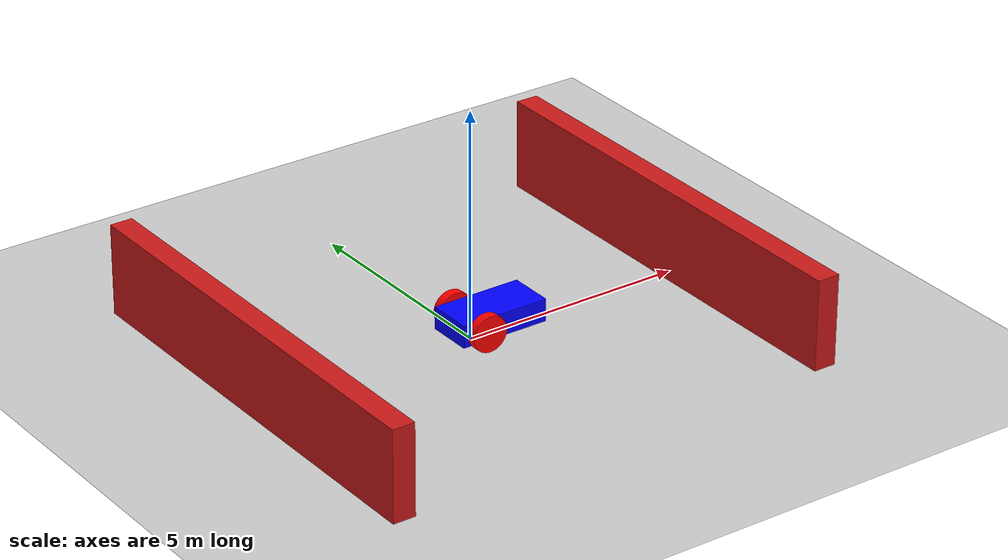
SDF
<?xml version="1.0" ?>
<sdf version="1.10">
    <world name="car_world">
        <physics name="1ms" type="ignored">
            <max_step_size>0.001</max_step_size>
            <real_time_factor>1.0</real_time_factor>
        </physics>
        <plugin
            filename="gz-sim-physics-system"
            name="gz::sim::systems::Physics">
        </plugin>
        <plugin
            filename="gz-sim-user-commands-system"
            name="gz::sim::systems::UserCommands">
        </plugin>
        <plugin
            filename="gz-sim-scene-broadcaster-system"
            name="gz::sim::systems::SceneBroadcaster">
        </plugin>

        <light type="directional" name="sun">
            <cast_shadows>true</cast_shadows>
            <pose>0 0 10 0 0 0</pose>
            <diffuse>0.8 0.8 0.8 1</diffuse>
            <specular>0.2 0.2 0.2 1</specular>
            <attenuation>
                <range>1000</range>
                <constant>0.9</constant>
                <linear>0.01</linear>
                <quadratic>0.001</quadratic>
            </attenuation>
            <direction>-0.5 0.1 -0.9</direction>
        </light>

        <model name="ground_plane">
            <static>true</static>
            <link name="link">
                <collision name="collision">
                <geometry>
                    <plane>
                    <normal>0 0 1</normal>
                    </plane>
                </geometry>
                </collision>
                <visual name="visual">
                <geometry>
                    <plane>
                    <normal>0 0 1</normal>
                    <size>100 100</size>
                    </plane>
                </geometry>
                <material>
                    <ambient>0.8 0.8 0.8 1</ambient>
                    <diffuse>0.8 0.8 0.8 1</diffuse>
                    <specular>0.8 0.8 0.8 1</specular>
                </material>
                </visual>
            </link>
        </model>
        <model name='vehicle_blue' canonical_link='chassis'>
            <pose relative_to='world'>0 0 0 0 0 0</pose>
            <link name='chassis'>
                <pose relative_to='__model__'>0.5 0 0.4 0 0 0</pose>
              <inertial> <!--inertial properties of the link mass, inertia matix-->
                  <mass>1.14395</mass>
                  <inertia>
                      <ixx>0.095329</ixx>
                      <ixy>0</ixy>
                      <ixz>0</ixz>
                      <iyy>0.381317</iyy>
                      <iyz>0</iyz>
                      <izz>0.476646</izz>
                  </inertia>
              </inertial>
                  <visual name='visual'>
                    <geometry>
                        <box>
                            <size>2.0 1.0 0.5</size>
                        </box>
                    </geometry>

                        <ambient>0.0 0.0 1.0 </ambient>
                    <material>
                        <diffuse>0.0 0.0 1.0 1</diffuse>
                        <specular>0.0 0.0 1.0 1</specular>
                    </material>
                </visual>
                  <collision name='collision'>
                      <geometry>
                          <box>
                              <size>2.0 1.0 0.5</size>
                          </box>
                      </geometry>
                  </collision>
                  <sensor name="imu_sensor" type="imu">
                        <always_on>1</always_on>
                        <update_rate>1</update_rate>
                        <visualize>true</visualize>
                        <topic>imu</topic>
                    </sensor>
              </link>
              <link name='left_wheel'>
                  <pose relative_to="chassis">-0.5 0.6 0 -1.5707 0 0</pose>
                  <inertial>
                      <mass>1</mass>
                      <inertia>
                          <ixx>0.043333</ixx>
                          <ixy>0</ixy>
                          <ixz>0</ixz>
                          <iyy>0.043333</iyy>
                          <iyz>0</iyz>
                          <izz>0.08</izz>
                      </inertia>
                  </inertial>

                    <visual name='visual'>
                      <geometry>
                          <cylinder>
                              <radius>0.4</radius>
                              <length>0.2</length>
                          </cylinder>
                      </geometry>
                      <material>
                          <ambient>1.0 0.0 0.0 1</ambient>
                          <diffuse>1.0 0.0 0.0 1</diffuse>
                          <specular>1.0 0.0 0.0 1</specular>
                      </material>
                  </visual>
                  <collision name='collision'>
                      <geometry>
                          <cylinder>
                              <radius>0.4</radius>
                              <length>0.2</length>
                          </cylinder>
                      </geometry>
                  </collision>
              </link>

<!--The same as left wheel but with different position-->
<link name='right_wheel'>
    <pose relative_to="chassis">-0.5 -0.6 0 -1.5707 0 0</pose> <!--angles are in radian-->
    <inertial>
        <mass>1</mass>
        <inertia>
            <ixx>0.043333</ixx>
            <ixy>0</ixy>
            <ixz>0</ixz>
            <iyy>0.043333</iyy>
            <iyz>0</iyz>
            <izz>0.08</izz>
        </inertia>
    </inertial>
    <visual name='visual'>
        <geometry>
            <cylinder>
                <radius>0.4</radius>
                <length>0.2</length>
            </cylinder>
        </geometry>
        <material>
            <ambient>1.0 0.0 0.0 1</ambient>
            <diffuse>1.0 0.0 0.0 1</diffuse>
            <specular>1.0 0.0 0.0 1</specular>
        </material>
    </visual>
    <collision name='collision'>
        <geometry>
            <cylinder>
                <radius>0.4</radius>
                <length>0.2</length>
            </cylinder>
        </geometry>
    </collision>
</link>

<frame name="caster_frame" attached_to='chassis'>
    <pose>0.8 0 -0.2 0 0 0</pose>
</frame>

<!--caster wheel-->
<link name='caster'>
    <pose relative_to='caster_frame'/>
    <inertial>
        <mass>1</mass>
        <inertia>
            <ixx>0.016</ixx>
            <ixy>0</ixy>
            <ixz>0</ixz>
            <iyy>0.016</iyy>
            <iyz>0</iyz>
            <izz>0.016</izz>
        </inertia>
    </inertial>
    <visual name='visual'>
        <geometry>
            <sphere>
                <radius>0.2</radius>
            </sphere>
        </geometry>
        <material>
            <ambient>0.0 1 0.0 1</ambient>
            <diffuse>0.0 1 0.0 1</diffuse>
            <specular>0.0 1 0.0 1</specular>
        </material>
    </visual>
    <collision name='collision'>
        <geometry>
            <sphere>
                <radius>0.2</radius>
            </sphere>
        </geometry>
    </collision>
</link>

<joint name='left_wheel_joint' type='revolute'>
    <pose relative_to='left_wheel'/>

        <parent>chassis</parent>
    <child>left_wheel</child>
        <axis>
        <xyz expressed_in='__model__'>0 1 0</xyz> <!--can be defined as any frame or even arbitrary frames-->
        <limit>
            <lower>-1.79769e+308</lower>    <!--negative infinity-->
            <upper>1.79769e+308</upper>     <!--positive infinity-->
        </limit>
    </axis>
</joint>

<joint name='right_wheel_joint' type='revolute'>
    <pose relative_to='right_wheel'/>

        <parent>chassis</parent>
    <child>right_wheel</child>
        <axis>
        <xyz expressed_in='__model__'>0 1 0</xyz> <!--can be defined as any frame or even arbitrary frames-->
        <limit>
            <lower>-1.79769e+308</lower>    <!--negative infinity-->
            <upper>1.79769e+308</upper>     <!--positive infinity-->
        </limit>
    </axis>
</joint>

<joint name='caster_wheel' type='ball'>
    <parent>chassis</parent>
    <child>caster</child>
</joint>

<plugin
    filename="gz-sim-diff-drive-system"
    name="gz::sim::systems::DiffDrive">
    <left_joint>left_wheel_joint</left_joint>
    <right_joint>right_wheel_joint</right_joint>
    <wheel_separation>1.2</wheel_separation>
    <wheel_radius>0.4</wheel_radius>
    <odom_publish_frequency>1</odom_publish_frequency>
    <topic>cmd_vel</topic>
</plugin>

          </model>

<model name="wall">
  <static>true</static>

  <!-- x y z roll pitch yaw -->
  <pose>5 0 1 0 0 0</pose>

  <link name="wall_link">

    <sensor name="wall_contact_sensor" type="contact">
        <contact>
            <collision>wall_collision</collision>
        </contact>
        </sensor>

    <visual name="wall_visual">
      <geometry>
        <box>
          <size>0.5 10.0 2.0</size>
        </box>
      </geometry>

      <material>
        <ambient>0.8 0.1 0.1 1</ambient>
        <diffuse>0.8 0.1 0.1 1</diffuse>
      </material>
    </visual>

    <collision name="wall_collision">
      <geometry>
        <box>
          <size>0.5 10.0 2.0</size>
        </box>
      </geometry>
    </collision>

  </link>

  <plugin
  filename="gz-sim-touchplugin-system"
  name="gz::sim::systems::TouchPlugin">

  <target>vehicle_blue</target>

  <namespace>wall</namespace>

  <time>0.001</time>

  <enabled>true</enabled>

</plugin>

</model>

<model name="wall2">
  <static>true</static>

  <!-- x y z roll pitch yaw -->
  <pose>-5 0 1 0 0 0</pose>

  <link name="wall2_link">

    <sensor name="wall2_contact_sensor" type="contact">
        <contact>
            <collision>wall2_collision</collision>
        </contact>
        </sensor>

    <visual name="wall2_visual">
      <geometry>
        <box>
          <size>0.5 10.0 2.0</size>
        </box>
      </geometry>

      <material>
        <ambient>0.8 0.1 0.1 1</ambient>
        <diffuse>0.8 0.1 0.1 1</diffuse>
      </material>
    </visual>

    <collision name="wall2_collision">
      <geometry>
        <box>
          <size>0.5 10.0 2.0</size>
        </box>
      </geometry>
    </collision>

  </link>

  <plugin
  filename="gz-sim-touchplugin-system"
  name="gz::sim::systems::TouchPlugin">

  <target>vehicle_blue</target>

  <namespace>wall2</namespace>

  <time>0.001</time>

  <enabled>true</enabled>

</plugin>

</model>

<plugin
  filename="gz-sim-contact-system"
  name="gz::sim::systems::Contact">
</plugin>

    <!-- Moving Forward-->
<plugin filename="gz-sim-triggered-publisher-system"
        name="gz::sim::systems::TriggeredPublisher">
    <input type="gz.msgs.Int32" topic="/keyboard/keypress">
        <match field="data">16777235</match>
    </input>
    <output type="gz.msgs.Twist" topic="/cmd_vel">
        linear: {x: 0.5}, angular: {z: 0.0}
    </output>
</plugin>

    <!-- Moving Backward-->
<plugin filename="gz-sim-triggered-publisher-system"
        name="gz::sim::systems::TriggeredPublisher">
    <input type="gz.msgs.Int32" topic="/keyboard/keypress">
        <match field="data">16777237</match>
    </input>
    <output type="gz.msgs.Twist" topic="/cmd_vel">
        linear: {x: -0.5}, angular: {z: 0.0}
    </output>
</plugin>

    <!-- Moving Left-->
<plugin filename="gz-sim-triggered-publisher-system"
        name="gz::sim::systems::TriggeredPublisher">
    <input type="gz.msgs.Int32" topic="/keyboard/keypress">
        <match field="data">16777234</match>
    </input>
    <output type="gz.msgs.Twist" topic="/cmd_vel">
        linear: {x: 0.0}, angular: {z: 0.5}
    </output>
</plugin>

    <!-- Moving Right-->
<plugin filename="gz-sim-triggered-publisher-system"
        name="gz::sim::systems::TriggeredPublisher">
    <input type="gz.msgs.Int32" topic="/keyboard/keypress">
        <match field="data">16777236</match>
    </input>
    <output type="gz.msgs.Twist" topic="/cmd_vel">
        linear: {x: 0.0}, angular: {z: -0.5}
    </output>
</plugin>
<plugin filename="gz-sim-imu-system"
        name="gz::sim::systems::Imu">
</plugin>
    </world>
</sdf>
